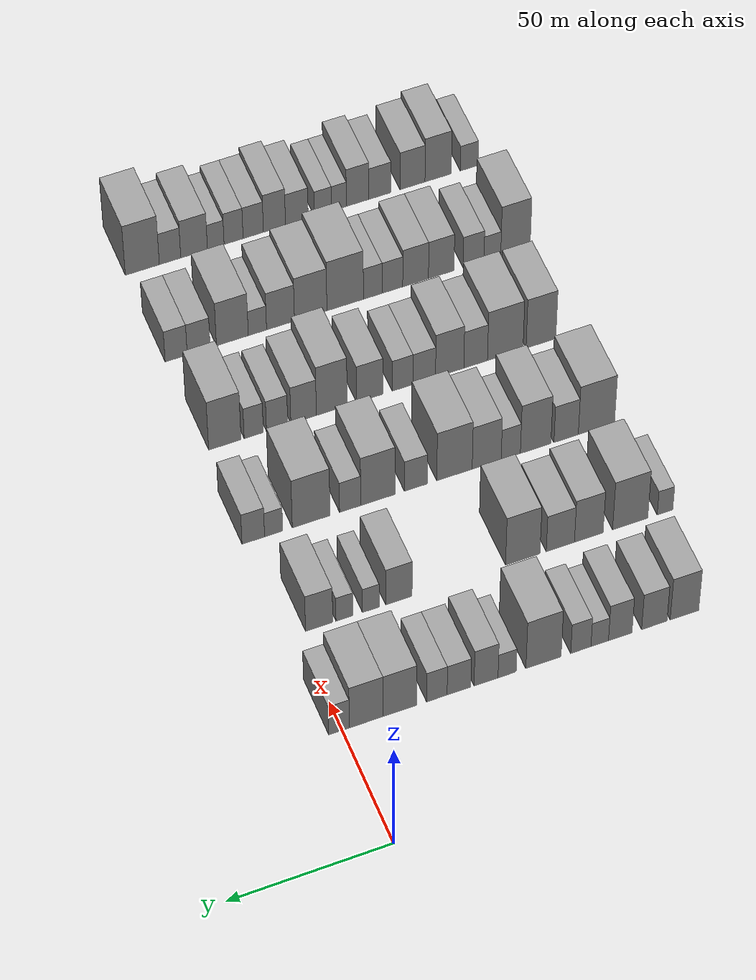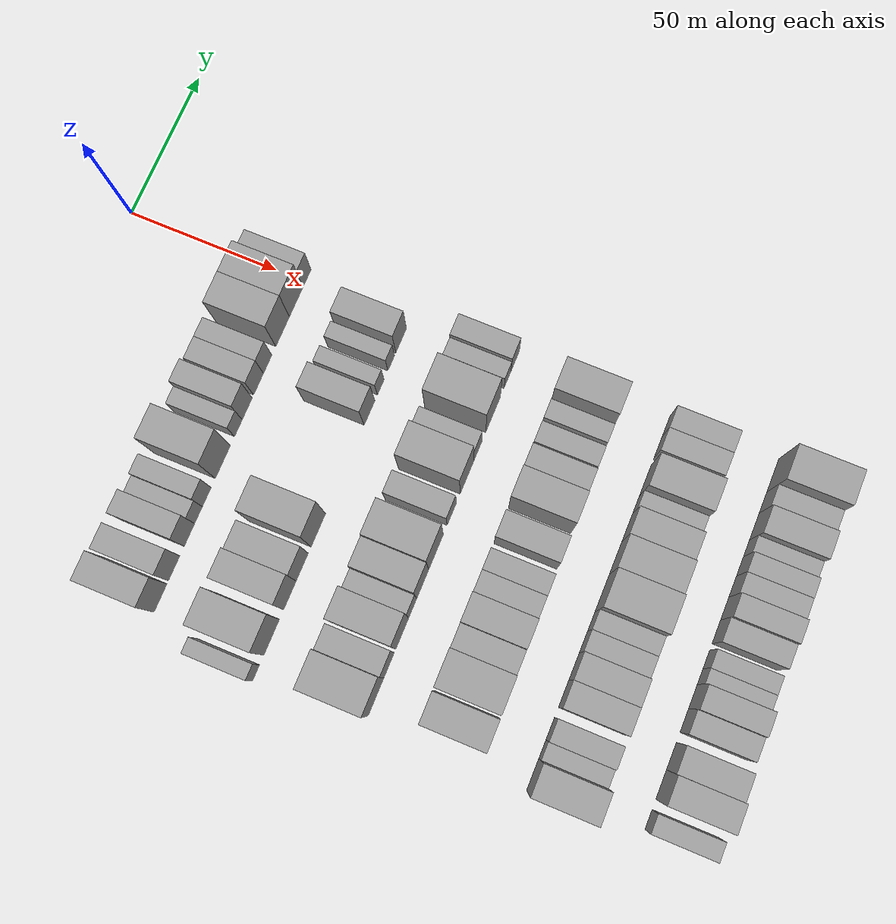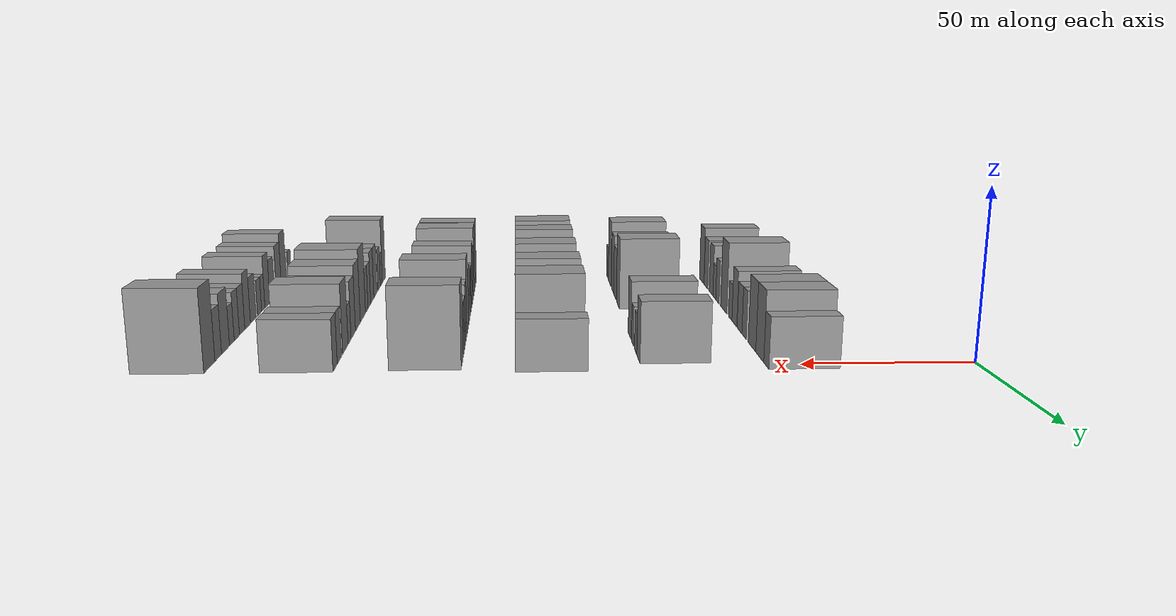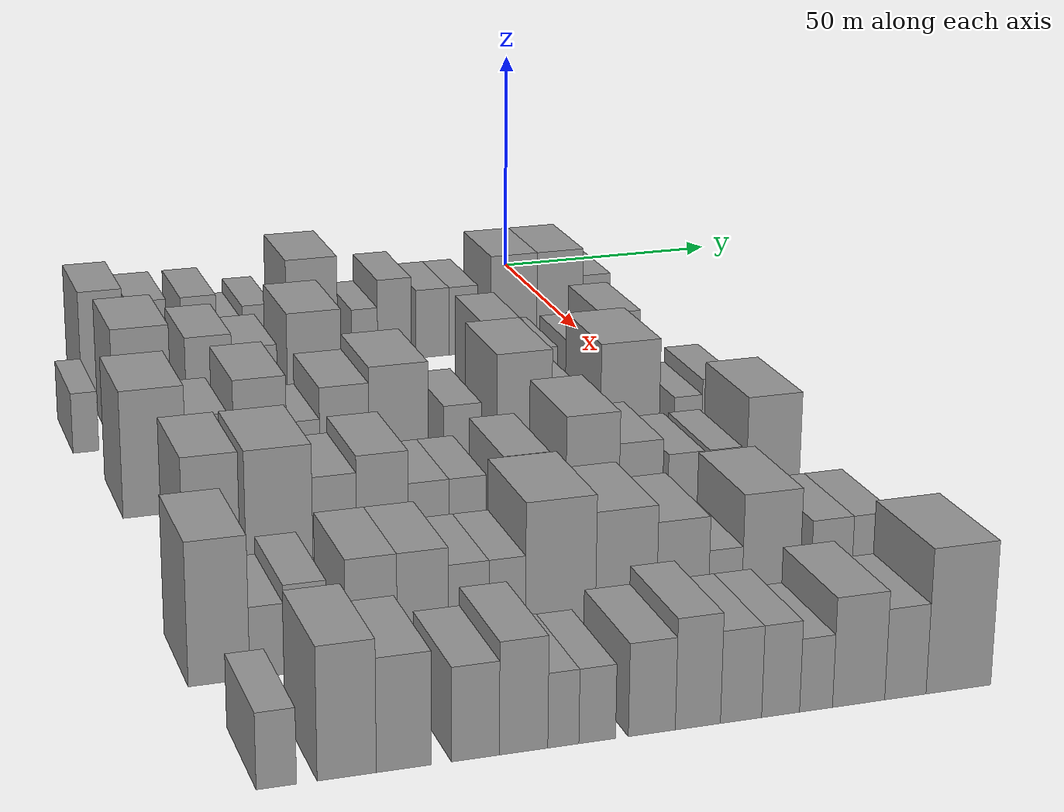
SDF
<sdf version="1.6">
 <world name="default">
  <model name="building_48">
   <static>1</static>
   <pose>50.0000 -105.7499 0 0.000000 0.000000 0.000000</pose>
   <link name="link">
    <pose>0 0 10.50 0 0 0</pose>
    <collision name="collision"><geometry><box><size>20.0000 8.9559 21.0000</size></box></geometry></collision>
    <visual name="visual">
     <cast_shadows>0</cast_shadows>
     <geometry><box><size>20.0000 8.9559 21.0000</size></box></geometry>
     <material>
      <script>
       <uri>model://grey_wall/materials/scripts</uri>
       <uri>model://grey_wall/materials/textures</uri>
       <name>vrc/grey_wall</name>
      </script>
     </material>
    </visual>
   </link>
  </model>
  <model name="building_49">
   <static>1</static>
   <pose>50.0000 -96.2931 0 0.000000 0.000000 0.000000</pose>
   <link name="link">
    <pose>0 0 9.00 0 0 0</pose>
    <collision name="collision"><geometry><box><size>20.0000 7.9578 18.0000</size></box></geometry></collision>
    <visual name="visual">
     <cast_shadows>0</cast_shadows>
     <geometry><box><size>20.0000 7.9578 18.0000</size></box></geometry>
     <material>
      <script>
       <uri>model://grey_wall/materials/scripts</uri>
       <uri>model://grey_wall/materials/textures</uri>
       <name>vrc/grey_wall</name>
      </script>
     </material>
    </visual>
   </link>
  </model>
  <model name="building_50">
   <static>1</static>
   <pose>50.0000 -85.6334 0 0.000000 0.000000 0.000000</pose>
   <link name="link">
    <pose>0 0 9.00 0 0 0</pose>
    <collision name="collision"><geometry><box><size>20.0000 7.3615 18.0000</size></box></geometry></collision>
    <visual name="visual">
     <cast_shadows>0</cast_shadows>
     <geometry><box><size>20.0000 7.3615 18.0000</size></box></geometry>
     <material>
      <script>
       <uri>model://grey_wall/materials/scripts</uri>
       <uri>model://grey_wall/materials/textures</uri>
       <name>vrc/grey_wall</name>
      </script>
     </material>
    </visual>
   </link>
  </model>
  <model name="building_51">
   <static>1</static>
   <pose>50.0000 -79.2243 0 0.000000 0.000000 0.000000</pose>
   <link name="link">
    <pose>0 0 6.00 0 0 0</pose>
    <collision name="collision"><geometry><box><size>20.0000 5.4566 12.0000</size></box></geometry></collision>
    <visual name="visual">
     <cast_shadows>0</cast_shadows>
     <geometry><box><size>20.0000 5.4566 12.0000</size></box></geometry>
     <material>
      <script>
       <uri>model://grey_wall/materials/scripts</uri>
       <uri>model://grey_wall/materials/textures</uri>
       <name>vrc/grey_wall</name>
      </script>
     </material>
    </visual>
   </link>
  </model>
  <model name="building_52">
   <static>1</static>
   <pose>50.0000 -73.3475 0 0.000000 0.000000 0.000000</pose>
   <link name="link">
    <pose>0 0 7.50 0 0 0</pose>
    <collision name="collision"><geometry><box><size>20.0000 6.2970 15.0000</size></box></geometry></collision>
    <visual name="visual">
     <cast_shadows>0</cast_shadows>
     <geometry><box><size>20.0000 6.2970 15.0000</size></box></geometry>
     <material>
      <script>
       <uri>model://grey_wall/materials/scripts</uri>
       <uri>model://grey_wall/materials/textures</uri>
       <name>vrc/grey_wall</name>
      </script>
     </material>
    </visual>
   </link>
  </model>
  <model name="building_53">
   <static>1</static>
   <pose>50.0000 -61.7412 0 0.000000 0.000000 0.000000</pose>
   <link name="link">
    <pose>0 0 12.00 0 0 0</pose>
    <collision name="collision"><geometry><box><size>20.0000 10.9156 24.0000</size></box></geometry></collision>
    <visual name="visual">
     <cast_shadows>0</cast_shadows>
     <geometry><box><size>20.0000 10.9156 24.0000</size></box></geometry>
     <material>
      <script>
       <uri>model://grey_wall/materials/scripts</uri>
       <uri>model://grey_wall/materials/textures</uri>
       <name>vrc/grey_wall</name>
      </script>
     </material>
    </visual>
   </link>
  </model>
  <model name="building_54">
   <static>1</static>
   <pose>50.0000 -50.4743 0 0.000000 0.000000 0.000000</pose>
   <link name="link">
    <pose>0 0 6.00 0 0 0</pose>
    <collision name="collision"><geometry><box><size>20.0000 5.6182 12.0000</size></box></geometry></collision>
    <visual name="visual">
     <cast_shadows>0</cast_shadows>
     <geometry><box><size>20.0000 5.6182 12.0000</size></box></geometry>
     <material>
      <script>
       <uri>model://grey_wall/materials/scripts</uri>
       <uri>model://grey_wall/materials/textures</uri>
       <name>vrc/grey_wall</name>
      </script>
     </material>
    </visual>
   </link>
  </model>
  <model name="building_55">
   <static>1</static>
   <pose>50.0000 -43.9768 0 0.000000 0.000000 0.000000</pose>
   <link name="link">
    <pose>0 0 9.00 0 0 0</pose>
    <collision name="collision"><geometry><box><size>20.0000 7.3768 18.0000</size></box></geometry></collision>
    <visual name="visual">
     <cast_shadows>0</cast_shadows>
     <geometry><box><size>20.0000 7.3768 18.0000</size></box></geometry>
     <material>
      <script>
       <uri>model://grey_wall/materials/scripts</uri>
       <uri>model://grey_wall/materials/textures</uri>
       <name>vrc/grey_wall</name>
      </script>
     </material>
    </visual>
   </link>
  </model>
  <model name="building_56">
   <static>1</static>
   <pose>50.0000 -35.6402 0 0.000000 0.000000 0.000000</pose>
   <link name="link">
    <pose>0 0 7.50 0 0 0</pose>
    <collision name="collision"><geometry><box><size>20.0000 7.2963 15.0000</size></box></geometry></collision>
    <visual name="visual">
     <cast_shadows>0</cast_shadows>
     <geometry><box><size>20.0000 7.2963 15.0000</size></box></geometry>
     <material>
      <script>
       <uri>model://grey_wall/materials/scripts</uri>
       <uri>model://grey_wall/materials/textures</uri>
       <name>vrc/grey_wall</name>
      </script>
     </material>
    </visual>
   </link>
  </model>
  <model name="building_57">
   <static>1</static>
   <pose>50.0000 -28.8450 0 0.000000 0.000000 0.000000</pose>
   <link name="link">
    <pose>0 0 7.50 0 0 0</pose>
    <collision name="collision"><geometry><box><size>20.0000 6.2941 15.0000</size></box></geometry></collision>
    <visual name="visual">
     <cast_shadows>0</cast_shadows>
     <geometry><box><size>20.0000 6.2941 15.0000</size></box></geometry>
     <material>
      <script>
       <uri>model://grey_wall/materials/scripts</uri>
       <uri>model://grey_wall/materials/textures</uri>
       <name>vrc/grey_wall</name>
      </script>
     </material>
    </visual>
   </link>
  </model>
  <model name="building_58">
   <static>1</static>
   <pose>50.0000 -17.5523 0 0.000000 0.000000 0.000000</pose>
   <link name="link">
    <pose>0 0 10.50 0 0 0</pose>
    <collision name="collision"><geometry><box><size>20.0000 10.2912 21.0000</size></box></geometry></collision>
    <visual name="visual">
     <cast_shadows>0</cast_shadows>
     <geometry><box><size>20.0000 10.2912 21.0000</size></box></geometry>
     <material>
      <script>
       <uri>model://grey_wall/materials/scripts</uri>
       <uri>model://grey_wall/materials/textures</uri>
       <name>vrc/grey_wall</name>
      </script>
     </material>
    </visual>
   </link>
  </model>
  <model name="building_59">
   <static>1</static>
   <pose>50.0000 -7.2520 0 0.000000 0.000000 0.000000</pose>
   <link name="link">
    <pose>0 0 10.50 0 0 0</pose>
    <collision name="collision"><geometry><box><size>20.0000 10.3095 21.0000</size></box></geometry></collision>
    <visual name="visual">
     <cast_shadows>0</cast_shadows>
     <geometry><box><size>20.0000 10.3095 21.0000</size></box></geometry>
     <material>
      <script>
       <uri>model://grey_wall/materials/scripts</uri>
       <uri>model://grey_wall/materials/textures</uri>
       <name>vrc/grey_wall</name>
      </script>
     </material>
    </visual>
   </link>
  </model>
  <model name="building_60">
   <static>1</static>
   <pose>50.0000 1.0371 0 0.000000 0.000000 0.000000</pose>
   <link name="link">
    <pose>0 0 7.50 0 0 0</pose>
    <collision name="collision"><geometry><box><size>20.0000 6.2686 15.0000</size></box></geometry></collision>
    <visual name="visual">
     <cast_shadows>0</cast_shadows>
     <geometry><box><size>20.0000 6.2686 15.0000</size></box></geometry>
     <material>
      <script>
       <uri>model://grey_wall/materials/scripts</uri>
       <uri>model://grey_wall/materials/textures</uri>
       <name>vrc/grey_wall</name>
      </script>
     </material>
    </visual>
   </link>
  </model>
  <model name="building_170">
   <static>1</static>
   <pose>85.0000 -114.8438 0 0.000000 0.000000 0.000000</pose>
   <link name="link">
    <pose>0 0 6.00 0 0 0</pose>
    <collision name="collision"><geometry><box><size>20.0000 4.9647 12.0000</size></box></geometry></collision>
    <visual name="visual">
     <cast_shadows>0</cast_shadows>
     <geometry><box><size>20.0000 4.9647 12.0000</size></box></geometry>
     <material>
      <script>
       <uri>model://grey_wall/materials/scripts</uri>
       <uri>model://grey_wall/materials/textures</uri>
       <name>vrc/grey_wall</name>
      </script>
     </material>
    </visual>
   </link>
  </model>
  <model name="building_171">
   <static>1</static>
   <pose>85.0000 -103.7670 0 0.000000 0.000000 0.000000</pose>
   <link name="link">
    <pose>0 0 12.00 0 0 0</pose>
    <collision name="collision"><geometry><box><size>20.0000 11.1890 24.0000</size></box></geometry></collision>
    <visual name="visual">
     <cast_shadows>0</cast_shadows>
     <geometry><box><size>20.0000 11.1890 24.0000</size></box></geometry>
     <material>
      <script>
       <uri>model://grey_wall/materials/scripts</uri>
       <uri>model://grey_wall/materials/textures</uri>
       <name>vrc/grey_wall</name>
      </script>
     </material>
    </visual>
   </link>
  </model>
  <model name="building_172">
   <static>1</static>
   <pose>85.0000 -90.6312 0 0.000000 0.000000 0.000000</pose>
   <link name="link">
    <pose>0 0 10.50 0 0 0</pose>
    <collision name="collision"><geometry><box><size>20.0000 9.0824 21.0000</size></box></geometry></collision>
    <visual name="visual">
     <cast_shadows>0</cast_shadows>
     <geometry><box><size>20.0000 9.0824 21.0000</size></box></geometry>
     <material>
      <script>
       <uri>model://grey_wall/materials/scripts</uri>
       <uri>model://grey_wall/materials/textures</uri>
       <name>vrc/grey_wall</name>
      </script>
     </material>
    </visual>
   </link>
  </model>
  <model name="building_173">
   <static>1</static>
   <pose>85.0000 -81.6453 0 0.000000 0.000000 0.000000</pose>
   <link name="link">
    <pose>0 0 9.00 0 0 0</pose>
    <collision name="collision"><geometry><box><size>20.0000 8.8895 18.0000</size></box></geometry></collision>
    <visual name="visual">
     <cast_shadows>0</cast_shadows>
     <geometry><box><size>20.0000 8.8895 18.0000</size></box></geometry>
     <material>
      <script>
       <uri>model://grey_wall/materials/scripts</uri>
       <uri>model://grey_wall/materials/textures</uri>
       <name>vrc/grey_wall</name>
      </script>
     </material>
    </visual>
   </link>
  </model>
  <model name="building_174">
   <static>1</static>
   <pose>85.0000 -69.7953 0 0.000000 0.000000 0.000000</pose>
   <link name="link">
    <pose>0 0 12.00 0 0 0</pose>
    <collision name="collision"><geometry><box><size>20.0000 10.8106 24.0000</size></box></geometry></collision>
    <visual name="visual">
     <cast_shadows>0</cast_shadows>
     <geometry><box><size>20.0000 10.8106 24.0000</size></box></geometry>
     <material>
      <script>
       <uri>model://grey_wall/materials/scripts</uri>
       <uri>model://grey_wall/materials/textures</uri>
       <name>vrc/grey_wall</name>
      </script>
     </material>
    </visual>
   </link>
  </model>
  <model name="building_175">
   <static>1</static>
   <pose>85.0000 -31.0818 0 0.000000 0.000000 0.000000</pose>
   <link name="link">
    <pose>0 0 9.00 0 0 0</pose>
    <collision name="collision"><geometry><box><size>20.0000 8.2055 18.0000</size></box></geometry></collision>
    <visual name="visual">
     <cast_shadows>0</cast_shadows>
     <geometry><box><size>20.0000 8.2055 18.0000</size></box></geometry>
     <material>
      <script>
       <uri>model://grey_wall/materials/scripts</uri>
       <uri>model://grey_wall/materials/textures</uri>
       <name>vrc/grey_wall</name>
      </script>
     </material>
    </visual>
   </link>
  </model>
  <model name="building_176">
   <static>1</static>
   <pose>85.0000 -22.3887 0 0.000000 0.000000 0.000000</pose>
   <link name="link">
    <pose>0 0 6.00 0 0 0</pose>
    <collision name="collision"><geometry><box><size>20.0000 5.1806 12.0000</size></box></geometry></collision>
    <visual name="visual">
     <cast_shadows>0</cast_shadows>
     <geometry><box><size>20.0000 5.1806 12.0000</size></box></geometry>
     <material>
      <script>
       <uri>model://grey_wall/materials/scripts</uri>
       <uri>model://grey_wall/materials/textures</uri>
       <name>vrc/grey_wall</name>
      </script>
     </material>
    </visual>
   </link>
  </model>
  <model name="building_177">
   <static>1</static>
   <pose>85.0000 -14.2085 0 0.000000 0.000000 0.000000</pose>
   <link name="link">
    <pose>0 0 6.00 0 0 0</pose>
    <collision name="collision"><geometry><box><size>20.0000 5.1797 12.0000</size></box></geometry></collision>
    <visual name="visual">
     <cast_shadows>0</cast_shadows>
     <geometry><box><size>20.0000 5.1797 12.0000</size></box></geometry>
     <material>
      <script>
       <uri>model://grey_wall/materials/scripts</uri>
       <uri>model://grey_wall/materials/textures</uri>
       <name>vrc/grey_wall</name>
      </script>
     </material>
    </visual>
   </link>
  </model>
  <model name="building_178">
   <static>1</static>
   <pose>85.0000 -6.4196 0 0.000000 0.000000 0.000000</pose>
   <link name="link">
    <pose>0 0 9.00 0 0 0</pose>
    <collision name="collision"><geometry><box><size>20.0000 8.3982 18.0000</size></box></geometry></collision>
    <visual name="visual">
     <cast_shadows>0</cast_shadows>
     <geometry><box><size>20.0000 8.3982 18.0000</size></box></geometry>
     <material>
      <script>
       <uri>model://grey_wall/materials/scripts</uri>
       <uri>model://grey_wall/materials/textures</uri>
       <name>vrc/grey_wall</name>
      </script>
     </material>
    </visual>
   </link>
  </model>
  <model name="building_291">
   <static>1</static>
   <pose>120.0000 -107.8985 0 0.000000 0.000000 0.000000</pose>
   <link name="link">
    <pose>0 0 12.00 0 0 0</pose>
    <collision name="collision"><geometry><box><size>20.0000 11.6447 24.0000</size></box></geometry></collision>
    <visual name="visual">
     <cast_shadows>0</cast_shadows>
     <geometry><box><size>20.0000 11.6447 24.0000</size></box></geometry>
     <material>
      <script>
       <uri>model://grey_wall/materials/scripts</uri>
       <uri>model://grey_wall/materials/textures</uri>
       <name>vrc/grey_wall</name>
      </script>
     </material>
    </visual>
   </link>
  </model>
  <model name="building_292">
   <static>1</static>
   <pose>120.0000 -98.1757 0 0.000000 0.000000 0.000000</pose>
   <link name="link">
    <pose>0 0 9.00 0 0 0</pose>
    <collision name="collision"><geometry><box><size>20.0000 7.8008 18.0000</size></box></geometry></collision>
    <visual name="visual">
     <cast_shadows>0</cast_shadows>
     <geometry><box><size>20.0000 7.8008 18.0000</size></box></geometry>
     <material>
      <script>
       <uri>model://grey_wall/materials/scripts</uri>
       <uri>model://grey_wall/materials/textures</uri>
       <name>vrc/grey_wall</name>
      </script>
     </material>
    </visual>
   </link>
  </model>
  <model name="building_293">
   <static>1</static>
   <pose>120.0000 -88.4019 0 0.000000 0.000000 0.000000</pose>
   <link name="link">
    <pose>0 0 12.00 0 0 0</pose>
    <collision name="collision"><geometry><box><size>20.0000 9.7467 24.0000</size></box></geometry></collision>
    <visual name="visual">
     <cast_shadows>0</cast_shadows>
     <geometry><box><size>20.0000 9.7467 24.0000</size></box></geometry>
     <material>
      <script>
       <uri>model://grey_wall/materials/scripts</uri>
       <uri>model://grey_wall/materials/textures</uri>
       <name>vrc/grey_wall</name>
      </script>
     </material>
    </visual>
   </link>
  </model>
  <model name="building_294">
   <static>1</static>
   <pose>120.0000 -80.4651 0 0.000000 0.000000 0.000000</pose>
   <link name="link">
    <pose>0 0 7.50 0 0 0</pose>
    <collision name="collision"><geometry><box><size>20.0000 6.1270 15.0000</size></box></geometry></collision>
    <visual name="visual">
     <cast_shadows>0</cast_shadows>
     <geometry><box><size>20.0000 6.1270 15.0000</size></box></geometry>
     <material>
      <script>
       <uri>model://grey_wall/materials/scripts</uri>
       <uri>model://grey_wall/materials/textures</uri>
       <name>vrc/grey_wall</name>
      </script>
     </material>
    </visual>
   </link>
  </model>
  <model name="building_295">
   <static>1</static>
   <pose>120.0000 -72.7918 0 0.000000 0.000000 0.000000</pose>
   <link name="link">
    <pose>0 0 10.50 0 0 0</pose>
    <collision name="collision"><geometry><box><size>20.0000 9.2196 21.0000</size></box></geometry></collision>
    <visual name="visual">
     <cast_shadows>0</cast_shadows>
     <geometry><box><size>20.0000 9.2196 21.0000</size></box></geometry>
     <material>
      <script>
       <uri>model://grey_wall/materials/scripts</uri>
       <uri>model://grey_wall/materials/textures</uri>
       <name>vrc/grey_wall</name>
      </script>
     </material>
    </visual>
   </link>
  </model>
  <model name="building_296">
   <static>1</static>
   <pose>120.0000 -62.5695 0 0.000000 0.000000 0.000000</pose>
   <link name="link">
    <pose>0 0 12.00 0 0 0</pose>
    <collision name="collision"><geometry><box><size>20.0000 11.2250 24.0000</size></box></geometry></collision>
    <visual name="visual">
     <cast_shadows>0</cast_shadows>
     <geometry><box><size>20.0000 11.2250 24.0000</size></box></geometry>
     <material>
      <script>
       <uri>model://grey_wall/materials/scripts</uri>
       <uri>model://grey_wall/materials/textures</uri>
       <name>vrc/grey_wall</name>
      </script>
     </material>
    </visual>
   </link>
  </model>
  <model name="building_297">
   <static>1</static>
   <pose>120.0000 -50.3438 0 0.000000 0.000000 0.000000</pose>
   <link name="link">
    <pose>0 0 7.50 0 0 0</pose>
    <collision name="collision"><geometry><box><size>20.0000 7.2263 15.0000</size></box></geometry></collision>
    <visual name="visual">
     <cast_shadows>0</cast_shadows>
     <geometry><box><size>20.0000 7.2263 15.0000</size></box></geometry>
     <material>
      <script>
       <uri>model://grey_wall/materials/scripts</uri>
       <uri>model://grey_wall/materials/textures</uri>
       <name>vrc/grey_wall</name>
      </script>
     </material>
    </visual>
   </link>
  </model>
  <model name="building_298">
   <static>1</static>
   <pose>120.0000 -38.3432 0 0.000000 0.000000 0.000000</pose>
   <link name="link">
    <pose>0 0 12.00 0 0 0</pose>
    <collision name="collision"><geometry><box><size>20.0000 10.7749 24.0000</size></box></geometry></collision>
    <visual name="visual">
     <cast_shadows>0</cast_shadows>
     <geometry><box><size>20.0000 10.7749 24.0000</size></box></geometry>
     <material>
      <script>
       <uri>model://grey_wall/materials/scripts</uri>
       <uri>model://grey_wall/materials/textures</uri>
       <name>vrc/grey_wall</name>
      </script>
     </material>
    </visual>
   </link>
  </model>
  <model name="building_299">
   <static>1</static>
   <pose>120.0000 -29.6377 0 0.000000 0.000000 0.000000</pose>
   <link name="link">
    <pose>0 0 7.50 0 0 0</pose>
    <collision name="collision"><geometry><box><size>20.0000 6.6361 15.0000</size></box></geometry></collision>
    <visual name="visual">
     <cast_shadows>0</cast_shadows>
     <geometry><box><size>20.0000 6.6361 15.0000</size></box></geometry>
     <material>
      <script>
       <uri>model://grey_wall/materials/scripts</uri>
       <uri>model://grey_wall/materials/textures</uri>
       <name>vrc/grey_wall</name>
      </script>
     </material>
    </visual>
   </link>
  </model>
  <model name="building_300">
   <static>1</static>
   <pose>120.0000 -17.4165 0 0.000000 0.000000 0.000000</pose>
   <link name="link">
    <pose>0 0 12.00 0 0 0</pose>
    <collision name="collision"><geometry><box><size>20.0000 11.8064 24.0000</size></box></geometry></collision>
    <visual name="visual">
     <cast_shadows>0</cast_shadows>
     <geometry><box><size>20.0000 11.8064 24.0000</size></box></geometry>
     <material>
      <script>
       <uri>model://grey_wall/materials/scripts</uri>
       <uri>model://grey_wall/materials/textures</uri>
       <name>vrc/grey_wall</name>
      </script>
     </material>
    </visual>
   </link>
  </model>
  <model name="building_301">
   <static>1</static>
   <pose>120.0000 -5.6868 0 0.000000 0.000000 0.000000</pose>
   <link name="link">
    <pose>0 0 6.00 0 0 0</pose>
    <collision name="collision"><geometry><box><size>20.0000 5.6530 12.0000</size></box></geometry></collision>
    <visual name="visual">
     <cast_shadows>0</cast_shadows>
     <geometry><box><size>20.0000 5.6530 12.0000</size></box></geometry>
     <material>
      <script>
       <uri>model://grey_wall/materials/scripts</uri>
       <uri>model://grey_wall/materials/textures</uri>
       <name>vrc/grey_wall</name>
      </script>
     </material>
    </visual>
   </link>
  </model>
  <model name="building_302">
   <static>1</static>
   <pose>120.0000 0.6489 0 0.000000 0.000000 0.000000</pose>
   <link name="link">
    <pose>0 0 7.50 0 0 0</pose>
    <collision name="collision"><geometry><box><size>20.0000 7.0184 15.0000</size></box></geometry></collision>
    <visual name="visual">
     <cast_shadows>0</cast_shadows>
     <geometry><box><size>20.0000 7.0184 15.0000</size></box></geometry>
     <material>
      <script>
       <uri>model://grey_wall/materials/scripts</uri>
       <uri>model://grey_wall/materials/textures</uri>
       <name>vrc/grey_wall</name>
      </script>
     </material>
    </visual>
   </link>
  </model>
  <model name="building_412">
   <static>1</static>
   <pose>155.0000 -104.6841 0 0.000000 0.000000 0.000000</pose>
   <link name="link">
    <pose>0 0 12.00 0 0 0</pose>
    <collision name="collision"><geometry><box><size>20.0000 9.6434 24.0000</size></box></geometry></collision>
    <visual name="visual">
     <cast_shadows>0</cast_shadows>
     <geometry><box><size>20.0000 9.6434 24.0000</size></box></geometry>
     <material>
      <script>
       <uri>model://grey_wall/materials/scripts</uri>
       <uri>model://grey_wall/materials/textures</uri>
       <name>vrc/grey_wall</name>
      </script>
     </material>
    </visual>
   </link>
  </model>
  <model name="building_413">
   <static>1</static>
   <pose>155.0000 -93.1049 0 0.000000 0.000000 0.000000</pose>
   <link name="link">
    <pose>0 0 12.00 0 0 0</pose>
    <collision name="collision"><geometry><box><size>20.0000 11.5149 24.0000</size></box></geometry></collision>
    <visual name="visual">
     <cast_shadows>0</cast_shadows>
     <geometry><box><size>20.0000 11.5149 24.0000</size></box></geometry>
     <material>
      <script>
       <uri>model://grey_wall/materials/scripts</uri>
       <uri>model://grey_wall/materials/textures</uri>
       <name>vrc/grey_wall</name>
      </script>
     </material>
    </visual>
   </link>
  </model>
  <model name="building_414">
   <static>1</static>
   <pose>155.0000 -83.5322 0 0.000000 0.000000 0.000000</pose>
   <link name="link">
    <pose>0 0 9.00 0 0 0</pose>
    <collision name="collision"><geometry><box><size>20.0000 7.6307 18.0000</size></box></geometry></collision>
    <visual name="visual">
     <cast_shadows>0</cast_shadows>
     <geometry><box><size>20.0000 7.6307 18.0000</size></box></geometry>
     <material>
      <script>
       <uri>model://grey_wall/materials/scripts</uri>
       <uri>model://grey_wall/materials/textures</uri>
       <name>vrc/grey_wall</name>
      </script>
     </material>
    </visual>
   </link>
  </model>
  <model name="building_415">
   <static>1</static>
   <pose>155.0000 -75.1694 0 0.000000 0.000000 0.000000</pose>
   <link name="link">
    <pose>0 0 10.50 0 0 0</pose>
    <collision name="collision"><geometry><box><size>20.0000 9.0949 21.0000</size></box></geometry></collision>
    <visual name="visual">
     <cast_shadows>0</cast_shadows>
     <geometry><box><size>20.0000 9.0949 21.0000</size></box></geometry>
     <material>
      <script>
       <uri>model://grey_wall/materials/scripts</uri>
       <uri>model://grey_wall/materials/textures</uri>
       <name>vrc/grey_wall</name>
      </script>
     </material>
    </visual>
   </link>
  </model>
  <model name="building_416">
   <static>1</static>
   <pose>155.0000 -67.0135 0 0.000000 0.000000 0.000000</pose>
   <link name="link">
    <pose>0 0 7.50 0 0 0</pose>
    <collision name="collision"><geometry><box><size>20.0000 7.2168 15.0000</size></box></geometry></collision>
    <visual name="visual">
     <cast_shadows>0</cast_shadows>
     <geometry><box><size>20.0000 7.2168 15.0000</size></box></geometry>
     <material>
      <script>
       <uri>model://grey_wall/materials/scripts</uri>
       <uri>model://grey_wall/materials/textures</uri>
       <name>vrc/grey_wall</name>
      </script>
     </material>
    </visual>
   </link>
  </model>
  <model name="building_417">
   <static>1</static>
   <pose>155.0000 -60.0645 0 0.000000 0.000000 0.000000</pose>
   <link name="link">
    <pose>0 0 7.50 0 0 0</pose>
    <collision name="collision"><geometry><box><size>20.0000 6.6814 15.0000</size></box></geometry></collision>
    <visual name="visual">
     <cast_shadows>0</cast_shadows>
     <geometry><box><size>20.0000 6.6814 15.0000</size></box></geometry>
     <material>
      <script>
       <uri>model://grey_wall/materials/scripts</uri>
       <uri>model://grey_wall/materials/textures</uri>
       <name>vrc/grey_wall</name>
      </script>
     </material>
    </visual>
   </link>
  </model>
  <model name="building_418">
   <static>1</static>
   <pose>155.0000 -49.5287 0 0.000000 0.000000 0.000000</pose>
   <link name="link">
    <pose>0 0 9.00 0 0 0</pose>
    <collision name="collision"><geometry><box><size>20.0000 8.3902 18.0000</size></box></geometry></collision>
    <visual name="visual">
     <cast_shadows>0</cast_shadows>
     <geometry><box><size>20.0000 8.3902 18.0000</size></box></geometry>
     <material>
      <script>
       <uri>model://grey_wall/materials/scripts</uri>
       <uri>model://grey_wall/materials/textures</uri>
       <name>vrc/grey_wall</name>
      </script>
     </material>
    </visual>
   </link>
  </model>
  <model name="building_419">
   <static>1</static>
   <pose>155.0000 -37.4310 0 0.000000 0.000000 0.000000</pose>
   <link name="link">
    <pose>0 0 12.00 0 0 0</pose>
    <collision name="collision"><geometry><box><size>20.0000 9.8051 24.0000</size></box></geometry></collision>
    <visual name="visual">
     <cast_shadows>0</cast_shadows>
     <geometry><box><size>20.0000 9.8051 24.0000</size></box></geometry>
     <material>
      <script>
       <uri>model://grey_wall/materials/scripts</uri>
       <uri>model://grey_wall/materials/textures</uri>
       <name>vrc/grey_wall</name>
      </script>
     </material>
    </visual>
   </link>
  </model>
  <model name="building_420">
   <static>1</static>
   <pose>155.0000 -28.4761 0 0.000000 0.000000 0.000000</pose>
   <link name="link">
    <pose>0 0 9.00 0 0 0</pose>
    <collision name="collision"><geometry><box><size>20.0000 8.1049 18.0000</size></box></geometry></collision>
    <visual name="visual">
     <cast_shadows>0</cast_shadows>
     <geometry><box><size>20.0000 8.1049 18.0000</size></box></geometry>
     <material>
      <script>
       <uri>model://grey_wall/materials/scripts</uri>
       <uri>model://grey_wall/materials/textures</uri>
       <name>vrc/grey_wall</name>
      </script>
     </material>
    </visual>
   </link>
  </model>
  <model name="building_421">
   <static>1</static>
   <pose>155.0000 -20.0626 0 0.000000 0.000000 0.000000</pose>
   <link name="link">
    <pose>0 0 7.50 0 0 0</pose>
    <collision name="collision"><geometry><box><size>20.0000 6.7221 15.0000</size></box></geometry></collision>
    <visual name="visual">
     <cast_shadows>0</cast_shadows>
     <geometry><box><size>20.0000 6.7221 15.0000</size></box></geometry>
     <material>
      <script>
       <uri>model://grey_wall/materials/scripts</uri>
       <uri>model://grey_wall/materials/textures</uri>
       <name>vrc/grey_wall</name>
      </script>
     </material>
    </visual>
   </link>
  </model>
  <model name="building_422">
   <static>1</static>
   <pose>155.0000 -12.6733 0 0.000000 0.000000 0.000000</pose>
   <link name="link">
    <pose>0 0 7.50 0 0 0</pose>
    <collision name="collision"><geometry><box><size>20.0000 6.0564 15.0000</size></box></geometry></collision>
    <visual name="visual">
     <cast_shadows>0</cast_shadows>
     <geometry><box><size>20.0000 6.0564 15.0000</size></box></geometry>
     <material>
      <script>
       <uri>model://grey_wall/materials/scripts</uri>
       <uri>model://grey_wall/materials/textures</uri>
       <name>vrc/grey_wall</name>
      </script>
     </material>
    </visual>
   </link>
  </model>
  <model name="building_423">
   <static>1</static>
   <pose>155.0000 -3.5448 0 0.000000 0.000000 0.000000</pose>
   <link name="link">
    <pose>0 0 12.00 0 0 0</pose>
    <collision name="collision"><geometry><box><size>20.0000 10.2007 24.0000</size></box></geometry></collision>
    <visual name="visual">
     <cast_shadows>0</cast_shadows>
     <geometry><box><size>20.0000 10.2007 24.0000</size></box></geometry>
     <material>
      <script>
       <uri>model://grey_wall/materials/scripts</uri>
       <uri>model://grey_wall/materials/textures</uri>
       <name>vrc/grey_wall</name>
      </script>
     </material>
    </visual>
   </link>
  </model>
  <model name="building_538">
   <static>1</static>
   <pose>190.0000 -110.8567 0 0.000000 0.000000 0.000000</pose>
   <link name="link">
    <pose>0 0 12.00 0 0 0</pose>
    <collision name="collision"><geometry><box><size>20.0000 9.6709 24.0000</size></box></geometry></collision>
    <visual name="visual">
     <cast_shadows>0</cast_shadows>
     <geometry><box><size>20.0000 9.6709 24.0000</size></box></geometry>
     <material>
      <script>
       <uri>model://grey_wall/materials/scripts</uri>
       <uri>model://grey_wall/materials/textures</uri>
       <name>vrc/grey_wall</name>
      </script>
     </material>
    </visual>
   </link>
  </model>
  <model name="building_539">
   <static>1</static>
   <pose>190.0000 -103.2756 0 0.000000 0.000000 0.000000</pose>
   <link name="link">
    <pose>0 0 6.00 0 0 0</pose>
    <collision name="collision"><geometry><box><size>20.0000 5.4913 12.0000</size></box></geometry></collision>
    <visual name="visual">
     <cast_shadows>0</cast_shadows>
     <geometry><box><size>20.0000 5.4913 12.0000</size></box></geometry>
     <material>
      <script>
       <uri>model://grey_wall/materials/scripts</uri>
       <uri>model://grey_wall/materials/textures</uri>
       <name>vrc/grey_wall</name>
      </script>
     </material>
    </visual>
   </link>
  </model>
  <model name="building_540">
   <static>1</static>
   <pose>190.0000 -97.1244 0 0.000000 0.000000 0.000000</pose>
   <link name="link">
    <pose>0 0 7.50 0 0 0</pose>
    <collision name="collision"><geometry><box><size>20.0000 6.8111 15.0000</size></box></geometry></collision>
    <visual name="visual">
     <cast_shadows>0</cast_shadows>
     <geometry><box><size>20.0000 6.8111 15.0000</size></box></geometry>
     <material>
      <script>
       <uri>model://grey_wall/materials/scripts</uri>
       <uri>model://grey_wall/materials/textures</uri>
       <name>vrc/grey_wall</name>
      </script>
     </material>
    </visual>
   </link>
  </model>
  <model name="building_541">
   <static>1</static>
   <pose>190.0000 -86.5467 0 0.000000 0.000000 0.000000</pose>
   <link name="link">
    <pose>0 0 9.00 0 0 0</pose>
    <collision name="collision"><geometry><box><size>20.0000 8.3444 18.0000</size></box></geometry></collision>
    <visual name="visual">
     <cast_shadows>0</cast_shadows>
     <geometry><box><size>20.0000 8.3444 18.0000</size></box></geometry>
     <material>
      <script>
       <uri>model://grey_wall/materials/scripts</uri>
       <uri>model://grey_wall/materials/textures</uri>
       <name>vrc/grey_wall</name>
      </script>
     </material>
    </visual>
   </link>
  </model>
  <model name="building_542">
   <static>1</static>
   <pose>190.0000 -78.1781 0 0.000000 0.000000 0.000000</pose>
   <link name="link">
    <pose>0 0 9.00 0 0 0</pose>
    <collision name="collision"><geometry><box><size>20.0000 8.3928 18.0000</size></box></geometry></collision>
    <visual name="visual">
     <cast_shadows>0</cast_shadows>
     <geometry><box><size>20.0000 8.3928 18.0000</size></box></geometry>
     <material>
      <script>
       <uri>model://grey_wall/materials/scripts</uri>
       <uri>model://grey_wall/materials/textures</uri>
       <name>vrc/grey_wall</name>
      </script>
     </material>
    </visual>
   </link>
  </model>
  <model name="building_543">
   <static>1</static>
   <pose>190.0000 -70.6478 0 0.000000 0.000000 0.000000</pose>
   <link name="link">
    <pose>0 0 7.50 0 0 0</pose>
    <collision name="collision"><geometry><box><size>20.0000 6.6677 15.0000</size></box></geometry></collision>
    <visual name="visual">
     <cast_shadows>0</cast_shadows>
     <geometry><box><size>20.0000 6.6677 15.0000</size></box></geometry>
     <material>
      <script>
       <uri>model://grey_wall/materials/scripts</uri>
       <uri>model://grey_wall/materials/textures</uri>
       <name>vrc/grey_wall</name>
      </script>
     </material>
    </visual>
   </link>
  </model>
  <model name="building_544">
   <static>1</static>
   <pose>190.0000 -64.2726 0 0.000000 0.000000 0.000000</pose>
   <link name="link">
    <pose>0 0 7.50 0 0 0</pose>
    <collision name="collision"><geometry><box><size>20.0000 6.0828 15.0000</size></box></geometry></collision>
    <visual name="visual">
     <cast_shadows>0</cast_shadows>
     <geometry><box><size>20.0000 6.0828 15.0000</size></box></geometry>
     <material>
      <script>
       <uri>model://grey_wall/materials/scripts</uri>
       <uri>model://grey_wall/materials/textures</uri>
       <name>vrc/grey_wall</name>
      </script>
     </material>
    </visual>
   </link>
  </model>
  <model name="building_545">
   <static>1</static>
   <pose>190.0000 -55.3181 0 0.000000 0.000000 0.000000</pose>
   <link name="link">
    <pose>0 0 12.00 0 0 0</pose>
    <collision name="collision"><geometry><box><size>20.0000 11.8262 24.0000</size></box></geometry></collision>
    <visual name="visual">
     <cast_shadows>0</cast_shadows>
     <geometry><box><size>20.0000 11.8262 24.0000</size></box></geometry>
     <material>
      <script>
       <uri>model://grey_wall/materials/scripts</uri>
       <uri>model://grey_wall/materials/textures</uri>
       <name>vrc/grey_wall</name>
      </script>
     </material>
    </visual>
   </link>
  </model>
  <model name="building_546">
   <static>1</static>
   <pose>190.0000 -44.1742 0 0.000000 0.000000 0.000000</pose>
   <link name="link">
    <pose>0 0 10.50 0 0 0</pose>
    <collision name="collision"><geometry><box><size>20.0000 10.4614 21.0000</size></box></geometry></collision>
    <visual name="visual">
     <cast_shadows>0</cast_shadows>
     <geometry><box><size>20.0000 10.4614 21.0000</size></box></geometry>
     <material>
      <script>
       <uri>model://grey_wall/materials/scripts</uri>
       <uri>model://grey_wall/materials/textures</uri>
       <name>vrc/grey_wall</name>
      </script>
     </material>
    </visual>
   </link>
  </model>
  <model name="building_547">
   <static>1</static>
   <pose>190.0000 -34.4466 0 0.000000 0.000000 0.000000</pose>
   <link name="link">
    <pose>0 0 9.00 0 0 0</pose>
    <collision name="collision"><geometry><box><size>20.0000 8.9940 18.0000</size></box></geometry></collision>
    <visual name="visual">
     <cast_shadows>0</cast_shadows>
     <geometry><box><size>20.0000 8.9940 18.0000</size></box></geometry>
     <material>
      <script>
       <uri>model://grey_wall/materials/scripts</uri>
       <uri>model://grey_wall/materials/textures</uri>
       <name>vrc/grey_wall</name>
      </script>
     </material>
    </visual>
   </link>
  </model>
  <model name="building_548">
   <static>1</static>
   <pose>190.0000 -27.0204 0 0.000000 0.000000 0.000000</pose>
   <link name="link">
    <pose>0 0 6.00 0 0 0</pose>
    <collision name="collision"><geometry><box><size>20.0000 5.8584 12.0000</size></box></geometry></collision>
    <visual name="visual">
     <cast_shadows>0</cast_shadows>
     <geometry><box><size>20.0000 5.8584 12.0000</size></box></geometry>
     <material>
      <script>
       <uri>model://grey_wall/materials/scripts</uri>
       <uri>model://grey_wall/materials/textures</uri>
       <name>vrc/grey_wall</name>
      </script>
     </material>
    </visual>
   </link>
  </model>
  <model name="building_549">
   <static>1</static>
   <pose>190.0000 -18.9887 0 0.000000 0.000000 0.000000</pose>
   <link name="link">
    <pose>0 0 10.50 0 0 0</pose>
    <collision name="collision"><geometry><box><size>20.0000 10.2049 21.0000</size></box></geometry></collision>
    <visual name="visual">
     <cast_shadows>0</cast_shadows>
     <geometry><box><size>20.0000 10.2049 21.0000</size></box></geometry>
     <material>
      <script>
       <uri>model://grey_wall/materials/scripts</uri>
       <uri>model://grey_wall/materials/textures</uri>
       <name>vrc/grey_wall</name>
      </script>
     </material>
    </visual>
   </link>
  </model>
  <model name="building_550">
   <static>1</static>
   <pose>190.0000 -8.2223 0 0.000000 0.000000 0.000000</pose>
   <link name="link">
    <pose>0 0 7.50 0 0 0</pose>
    <collision name="collision"><geometry><box><size>20.0000 7.3279 15.0000</size></box></geometry></collision>
    <visual name="visual">
     <cast_shadows>0</cast_shadows>
     <geometry><box><size>20.0000 7.3279 15.0000</size></box></geometry>
     <material>
      <script>
       <uri>model://grey_wall/materials/scripts</uri>
       <uri>model://grey_wall/materials/textures</uri>
       <name>vrc/grey_wall</name>
      </script>
     </material>
    </visual>
   </link>
  </model>
  <model name="building_551">
   <static>1</static>
   <pose>190.0000 -1.0425 0 0.000000 0.000000 0.000000</pose>
   <link name="link">
    <pose>0 0 7.50 0 0 0</pose>
    <collision name="collision"><geometry><box><size>20.0000 7.0317 15.0000</size></box></geometry></collision>
    <visual name="visual">
     <cast_shadows>0</cast_shadows>
     <geometry><box><size>20.0000 7.0317 15.0000</size></box></geometry>
     <material>
      <script>
       <uri>model://grey_wall/materials/scripts</uri>
       <uri>model://grey_wall/materials/textures</uri>
       <name>vrc/grey_wall</name>
      </script>
     </material>
    </visual>
   </link>
  </model>
  <model name="building_673">
   <static>1</static>
   <pose>225.0000 -109.8980 0 0.000000 0.000000 0.000000</pose>
   <link name="link">
    <pose>0 0 6.00 0 0 0</pose>
    <collision name="collision"><geometry><box><size>20.0000 5.8688 12.0000</size></box></geometry></collision>
    <visual name="visual">
     <cast_shadows>0</cast_shadows>
     <geometry><box><size>20.0000 5.8688 12.0000</size></box></geometry>
     <material>
      <script>
       <uri>model://grey_wall/materials/scripts</uri>
       <uri>model://grey_wall/materials/textures</uri>
       <name>vrc/grey_wall</name>
      </script>
     </material>
    </visual>
   </link>
  </model>
  <model name="building_674">
   <static>1</static>
   <pose>225.0000 -99.5998 0 0.000000 0.000000 0.000000</pose>
   <link name="link">
    <pose>0 0 10.50 0 0 0</pose>
    <collision name="collision"><geometry><box><size>20.0000 8.7276 21.0000</size></box></geometry></collision>
    <visual name="visual">
     <cast_shadows>0</cast_shadows>
     <geometry><box><size>20.0000 8.7276 21.0000</size></box></geometry>
     <material>
      <script>
       <uri>model://grey_wall/materials/scripts</uri>
       <uri>model://grey_wall/materials/textures</uri>
       <name>vrc/grey_wall</name>
      </script>
     </material>
    </visual>
   </link>
  </model>
  <model name="building_675">
   <static>1</static>
   <pose>225.0000 -91.1182 0 0.000000 0.000000 0.000000</pose>
   <link name="link">
    <pose>0 0 9.00 0 0 0</pose>
    <collision name="collision"><geometry><box><size>20.0000 8.2356 18.0000</size></box></geometry></collision>
    <visual name="visual">
     <cast_shadows>0</cast_shadows>
     <geometry><box><size>20.0000 8.2356 18.0000</size></box></geometry>
     <material>
      <script>
       <uri>model://grey_wall/materials/scripts</uri>
       <uri>model://grey_wall/materials/textures</uri>
       <name>vrc/grey_wall</name>
      </script>
     </material>
    </visual>
   </link>
  </model>
  <model name="building_676">
   <static>1</static>
   <pose>225.0000 -80.3714 0 0.000000 0.000000 0.000000</pose>
   <link name="link">
    <pose>0 0 7.50 0 0 0</pose>
    <collision name="collision"><geometry><box><size>20.0000 7.2582 15.0000</size></box></geometry></collision>
    <visual name="visual">
     <cast_shadows>0</cast_shadows>
     <geometry><box><size>20.0000 7.2582 15.0000</size></box></geometry>
     <material>
      <script>
       <uri>model://grey_wall/materials/scripts</uri>
       <uri>model://grey_wall/materials/textures</uri>
       <name>vrc/grey_wall</name>
      </script>
     </material>
    </visual>
   </link>
  </model>
  <model name="building_677">
   <static>1</static>
   <pose>225.0000 -73.0307 0 0.000000 0.000000 0.000000</pose>
   <link name="link">
    <pose>0 0 9.00 0 0 0</pose>
    <collision name="collision"><geometry><box><size>20.0000 7.4231 18.0000</size></box></geometry></collision>
    <visual name="visual">
     <cast_shadows>0</cast_shadows>
     <geometry><box><size>20.0000 7.4231 18.0000</size></box></geometry>
     <material>
      <script>
       <uri>model://grey_wall/materials/scripts</uri>
       <uri>model://grey_wall/materials/textures</uri>
       <name>vrc/grey_wall</name>
      </script>
     </material>
    </visual>
   </link>
  </model>
  <model name="building_678">
   <static>1</static>
   <pose>225.0000 -66.9157 0 0.000000 0.000000 0.000000</pose>
   <link name="link">
    <pose>0 0 6.00 0 0 0</pose>
    <collision name="collision"><geometry><box><size>20.0000 4.8070 12.0000</size></box></geometry></collision>
    <visual name="visual">
     <cast_shadows>0</cast_shadows>
     <geometry><box><size>20.0000 4.8070 12.0000</size></box></geometry>
     <material>
      <script>
       <uri>model://grey_wall/materials/scripts</uri>
       <uri>model://grey_wall/materials/textures</uri>
       <name>vrc/grey_wall</name>
      </script>
     </material>
    </visual>
   </link>
  </model>
  <model name="building_679">
   <static>1</static>
   <pose>225.0000 -61.6526 0 0.000000 0.000000 0.000000</pose>
   <link name="link">
    <pose>0 0 6.00 0 0 0</pose>
    <collision name="collision"><geometry><box><size>20.0000 5.7193 12.0000</size></box></geometry></collision>
    <visual name="visual">
     <cast_shadows>0</cast_shadows>
     <geometry><box><size>20.0000 5.7193 12.0000</size></box></geometry>
     <material>
      <script>
       <uri>model://grey_wall/materials/scripts</uri>
       <uri>model://grey_wall/materials/textures</uri>
       <name>vrc/grey_wall</name>
      </script>
     </material>
    </visual>
   </link>
  </model>
  <model name="building_680">
   <static>1</static>
   <pose>225.0000 -53.0852 0 0.000000 0.000000 0.000000</pose>
   <link name="link">
    <pose>0 0 7.50 0 0 0</pose>
    <collision name="collision"><geometry><box><size>20.0000 7.4153 15.0000</size></box></geometry></collision>
    <visual name="visual">
     <cast_shadows>0</cast_shadows>
     <geometry><box><size>20.0000 7.4153 15.0000</size></box></geometry>
     <material>
      <script>
       <uri>model://grey_wall/materials/scripts</uri>
       <uri>model://grey_wall/materials/textures</uri>
       <name>vrc/grey_wall</name>
      </script>
     </material>
    </visual>
   </link>
  </model>
  <model name="building_681">
   <static>1</static>
   <pose>225.0000 -45.7750 0 0.000000 0.000000 0.000000</pose>
   <link name="link">
    <pose>0 0 9.00 0 0 0</pose>
    <collision name="collision"><geometry><box><size>20.0000 7.2052 18.0000</size></box></geometry></collision>
    <visual name="visual">
     <cast_shadows>0</cast_shadows>
     <geometry><box><size>20.0000 7.2052 18.0000</size></box></geometry>
     <material>
      <script>
       <uri>model://grey_wall/materials/scripts</uri>
       <uri>model://grey_wall/materials/textures</uri>
       <name>vrc/grey_wall</name>
      </script>
     </material>
    </visual>
   </link>
  </model>
  <model name="building_682">
   <static>1</static>
   <pose>225.0000 -38.8579 0 0.000000 0.000000 0.000000</pose>
   <link name="link">
    <pose>0 0 7.50 0 0 0</pose>
    <collision name="collision"><geometry><box><size>20.0000 6.6290 15.0000</size></box></geometry></collision>
    <visual name="visual">
     <cast_shadows>0</cast_shadows>
     <geometry><box><size>20.0000 6.6290 15.0000</size></box></geometry>
     <material>
      <script>
       <uri>model://grey_wall/materials/scripts</uri>
       <uri>model://grey_wall/materials/textures</uri>
       <name>vrc/grey_wall</name>
      </script>
     </material>
    </visual>
   </link>
  </model>
  <model name="building_683">
   <static>1</static>
   <pose>225.0000 -32.4566 0 0.000000 0.000000 0.000000</pose>
   <link name="link">
    <pose>0 0 7.50 0 0 0</pose>
    <collision name="collision"><geometry><box><size>20.0000 6.1736 15.0000</size></box></geometry></collision>
    <visual name="visual">
     <cast_shadows>0</cast_shadows>
     <geometry><box><size>20.0000 6.1736 15.0000</size></box></geometry>
     <material>
      <script>
       <uri>model://grey_wall/materials/scripts</uri>
       <uri>model://grey_wall/materials/textures</uri>
       <name>vrc/grey_wall</name>
      </script>
     </material>
    </visual>
   </link>
  </model>
  <model name="building_684">
   <static>1</static>
   <pose>225.0000 -26.6685 0 0.000000 0.000000 0.000000</pose>
   <link name="link">
    <pose>0 0 6.00 0 0 0</pose>
    <collision name="collision"><geometry><box><size>20.0000 5.4025 12.0000</size></box></geometry></collision>
    <visual name="visual">
     <cast_shadows>0</cast_shadows>
     <geometry><box><size>20.0000 5.4025 12.0000</size></box></geometry>
     <material>
      <script>
       <uri>model://grey_wall/materials/scripts</uri>
       <uri>model://grey_wall/materials/textures</uri>
       <name>vrc/grey_wall</name>
      </script>
     </material>
    </visual>
   </link>
  </model>
  <model name="building_685">
   <static>1</static>
   <pose>225.0000 -19.6471 0 0.000000 0.000000 0.000000</pose>
   <link name="link">
    <pose>0 0 9.00 0 0 0</pose>
    <collision name="collision"><geometry><box><size>20.0000 8.6404 18.0000</size></box></geometry></collision>
    <visual name="visual">
     <cast_shadows>0</cast_shadows>
     <geometry><box><size>20.0000 8.6404 18.0000</size></box></geometry>
     <material>
      <script>
       <uri>model://grey_wall/materials/scripts</uri>
       <uri>model://grey_wall/materials/textures</uri>
       <name>vrc/grey_wall</name>
      </script>
     </material>
    </visual>
   </link>
  </model>
  <model name="building_686">
   <static>1</static>
   <pose>225.0000 -11.8646 0 0.000000 0.000000 0.000000</pose>
   <link name="link">
    <pose>0 0 7.50 0 0 0</pose>
    <collision name="collision"><geometry><box><size>20.0000 6.9247 15.0000</size></box></geometry></collision>
    <visual name="visual">
     <cast_shadows>0</cast_shadows>
     <geometry><box><size>20.0000 6.9247 15.0000</size></box></geometry>
     <material>
      <script>
       <uri>model://grey_wall/materials/scripts</uri>
       <uri>model://grey_wall/materials/textures</uri>
       <name>vrc/grey_wall</name>
      </script>
     </material>
    </visual>
   </link>
  </model>
  <model name="building_687">
   <static>1</static>
   <pose>225.0000 -2.9178 0 0.000000 0.000000 0.000000</pose>
   <link name="link">
    <pose>0 0 12.00 0 0 0</pose>
    <collision name="collision"><geometry><box><size>20.0000 10.9687 24.0000</size></box></geometry></collision>
    <visual name="visual">
     <cast_shadows>0</cast_shadows>
     <geometry><box><size>20.0000 10.9687 24.0000</size></box></geometry>
     <material>
      <script>
       <uri>model://grey_wall/materials/scripts</uri>
       <uri>model://grey_wall/materials/textures</uri>
       <name>vrc/grey_wall</name>
      </script>
     </material>
    </visual>
   </link>
  </model>
 </world>
</sdf>
